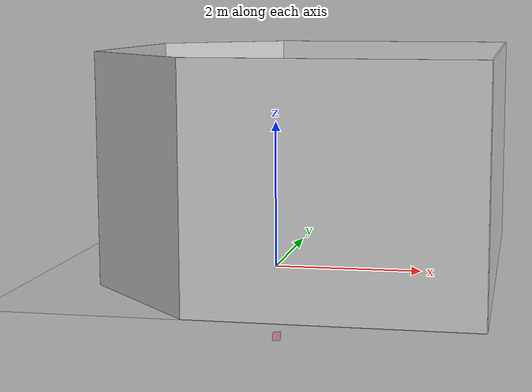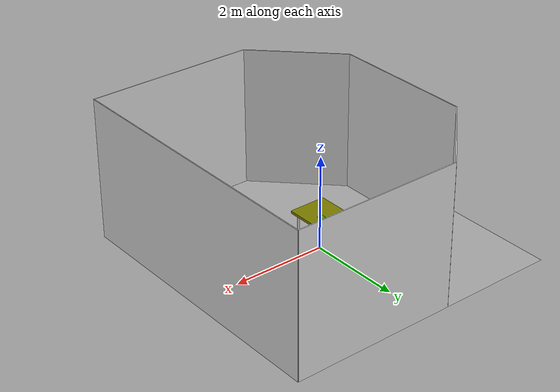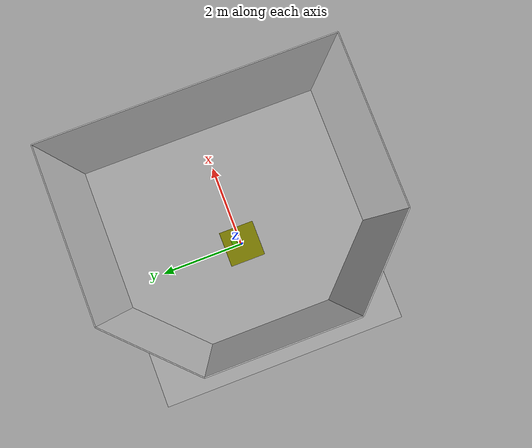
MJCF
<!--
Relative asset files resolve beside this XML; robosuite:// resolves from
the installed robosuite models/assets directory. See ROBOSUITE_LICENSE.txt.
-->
<mujoco model="panda_placement_scene">
  <asset>
    <texture builtin="gradient" height="256" rgb1=".9 .9 1." rgb2=".2 .3 .4" type="skybox" width="256" />
    <texture file="robosuite://textures/light-gray-floor-tile.png" type="2d" name="texplane" />
    <material name="floorplane" reflectance="0.01" shininess="0.0" specular="0.0" texrepeat="2 2" texture="texplane" texuniform="true" />
    <texture file="robosuite://textures/ceramic.png" type="cube" name="tex-ceramic" />
    <material name="table_ceramic" reflectance="0.0" shininess="0.0" specular="0.2" texrepeat="1 1" texture="tex-ceramic" />
    <texture file="robosuite://textures/steel-brushed.png" type="cube" name="tex-steel-brushed" />
    <material name="table_legs_metal" reflectance="0.8" shininess="0.8" texrepeat="1 1" texture="tex-steel-brushed" />
    <texture file="robosuite://textures/light-gray-plaster.png" type="2d" name="tex-light-gray-plaster" />
    <material name="walls_mat" reflectance="0.0" shininess="0.1" specular="0.1" texrepeat="3 3" texture="tex-light-gray-plaster" texuniform="true" />
    <texture name="textable" builtin="flat" height="512" width="512" rgb1="0.5 0.5 0.5" rgb2="0.5 0.5 0.5" />
    <material name="table_mat" texture="textable" />
  </asset>
  <worldbody>
    <geom condim="3" group="1" material="floorplane" name="floor" pos="0.0 0.0 0.0" size="3 3 .125" type="plane" />
    <geom pos="-1.25 2.25 1.5" quat="0.6532815 0.6532815 0.2705981 0.2705981" size="1.06 1.5 0.01" type="box" conaffinity="0" contype="0" group="1" name="wall_leftcorner_visual" material="walls_mat" />
    <geom pos="-1.25 -2.25 1.5" quat="0.6532815 0.6532815 -0.2705981 -0.2705981" size="1.06 1.5 0.01" type="box" conaffinity="0" contype="0" group="1" name="wall_rightcorner_visual" material="walls_mat" />
    <geom pos="1.25 3.0 1.5" quat="0.7071 0.7071 0 0" size="1.75 1.5 0.01" type="box" conaffinity="0" contype="0" group="1" name="wall_left_visual" material="walls_mat" />
    <geom pos="1.25 -3.0 1.5" quat="0.7071 -0.7071 0 0" size="1.75 1.5 0.01" type="box" conaffinity="0" contype="0" group="1" name="wall_right_visual" material="walls_mat" />
    <geom pos="-2.0 0.0 1.5" quat="0.5 0.5 0.5 0.5" size="1.5 1.5 0.01" type="box" conaffinity="0" contype="0" group="1" name="wall_rear_visual" material="walls_mat" />
    <geom pos="3.0 0.0 1.5" quat="0.5 0.5 -0.5 -0.5" size="3 1.5 0.01" type="box" conaffinity="0" contype="0" group="1" name="wall_front_visual" material="walls_mat" />
    <!-- Table collision and visual dimensions must be edited together. -->
    <body name="table" pos="0.0 0.0 0.775">
      <geom pos="0 0 0" size="0.4 0.4 0.025" type="box" group="0" name="table_collision" friction="1.0 0.005 0.0001" rgba="0.5 0.5 0 1" />
      <geom pos="0 0 0" size="0.4 0.4 0.025" type="box" conaffinity="0" contype="0" group="1" name="table_visual" material="table_ceramic" />
      <site pos="0.0 0.0 0.025" name="table_top" size="0.001 0.001 0.001" rgba="0 0 0 0" />
      <geom pos="0.30000000000000004 0.30000000000000004 -0.3875" size="0.025 0.3875" type="cylinder" conaffinity="0" contype="0" group="1" name="table_leg1_visual" material="table_legs_metal" />
      <geom pos="-0.30000000000000004 0.30000000000000004 -0.3875" size="0.025 0.3875" type="cylinder" conaffinity="0" contype="0" group="1" name="table_leg2_visual" material="table_legs_metal" />
      <geom pos="-0.30000000000000004 -0.30000000000000004 -0.3875" size="0.025 0.3875" type="cylinder" conaffinity="0" contype="0" group="1" name="table_leg3_visual" material="table_legs_metal" />
      <geom pos="0.30000000000000004 -0.30000000000000004 -0.3875" size="0.025 0.3875" type="cylinder" conaffinity="0" contype="0" group="1" name="table_leg4_visual" material="table_legs_metal" />
    </body>
    <light pos="1.0 1.0 1.5" dir="-0.2 -0.2 -1" specular="0.3 0.3 0.3" directional="true" castshadow="false" />
    <camera mode="fixed" name="frontview" pos="1.6 0.0 1.45" quat="0.56 0.43 0.43 0.56" />
    <camera mode="fixed" name="birdview" pos="-0.2 0.0 3.0" quat="0.7071 0 0 0.7071" />
    <!-- Camera selected by camera_name in the runtime YAML. -->
    <camera mode="fixed" name="agentview" pos="0.5 0.0 1.35" quat="0.6530979720442611 0.2710406591485372 0.2710406591485372 0.6530979720442611" fovy="45.0" />
    <camera mode="fixed" name="sideview" pos="-0.05651774593317116 1.2761224129427358 1.4879572214102434" quat="0.009905065491771751 0.006877963156909582 0.5912228352893879 0.806418094001364" />
    <body mocap="true" pos="0.0 0.0 -1.0" name="left_eef_target">
      <geom rgba="0.898 0.420 0.435 0.5" conaffinity="0" contype="0" type="box" size="0.05 0.05 0.05" pos="0 0 0" group="2" name="left_eef_target_box" />
      <geom rgba="0.898 0.420 0.435 0.8" conaffinity="0" contype="0" type="sphere" size="0.01" pos="0 0 0" group="2" name="left_eef_target_sphere" />
    </body>
    <body mocap="true" pos="0.0 0.0 -1.0" name="right_eef_target">
      <geom rgba="0.208 0.314 0.439 0.5" conaffinity="0" contype="0" type="box" size="0.05 0.05 0.05" pos="0 0 0" group="2" name="right_eef_target_box" />
      <geom rgba="0.208 0.314 0.439 0.8" conaffinity="0" contype="0" type="sphere" size="0.01" pos="0 0 0" group="2" name="right_eef_target_sphere" />
    </body>
    <!-- Placement target: visual site only, never a collision obstacle. -->
    <site type="box" pos="0.1 0.15 0.8005" size="0.06 0.06 0.0005" rgba="0 1 0 0.35" name="target_region" />
    <!-- The task samples cube pose on reset; this body pos is not a spawn setting.
         Edit both geom sizes; collision mass/density defines physical mass. -->
    <body pos="0 0 0" name="cube_main">
      <geom rgba="0.5 0 0 1" density="1562.4999999999998" friction="1.0 0.005 0.0001" solref="0.02 1.0" solimp="0.9 0.95 0.001" type="box" size="0.02 0.02 0.02" pos="0 0 0" group="0" name="cube_g0" />
      <geom conaffinity="0" contype="0" mass="1e-8" rgba="1 0 0 1" type="box" size="0.02 0.02 0.02" pos="0 0 0" group="1" name="cube_g0_vis" />
      <joint type="free" name="cube_joint0" />
      <site type="sphere" group="0" pos="0 0 0" size="0.002 0.002 0.002" rgba="1 0 0 1" name="cube_default_site" />
    </body>
  </worldbody>
  <option impratio="20" cone="elliptic" density="1.2" viscosity="0.00002" timestep="0.002" />
  <visual>
    <map znear="0.001" />
    <quality offsamples="0" />
  </visual>
</mujoco>
